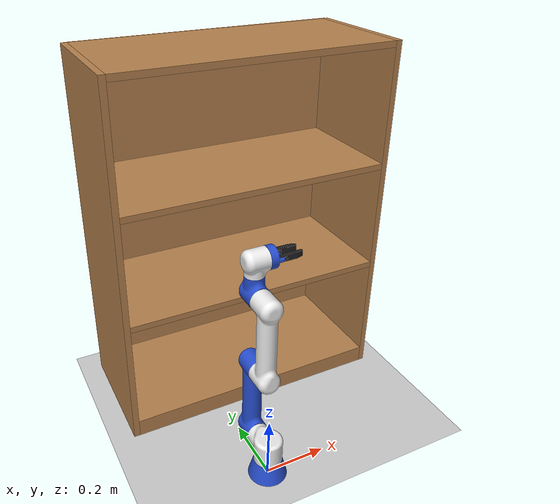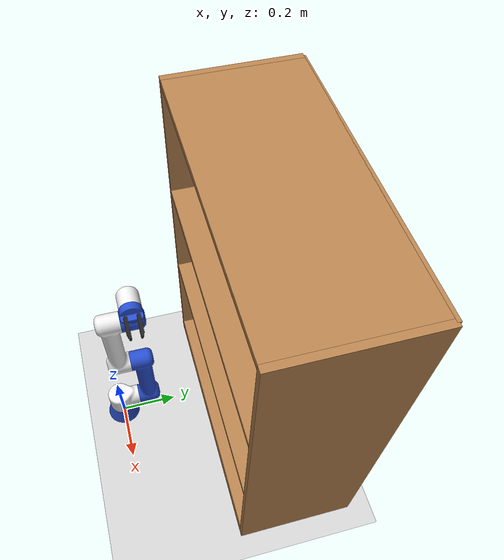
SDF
<sdf version="1.7">
 <world name="default">
  <light name="sun" type="directional">
   <pose>0 0 10 0 -0 0</pose>
   <diffuse>0.8 0.8 0.8 1</diffuse>
   <specular>0.2 0.2 0.2 1</specular>
   <attenuation>
    <range>1000</range>
    <constant>0.9</constant>
    <linear>0.01</linear>
    <quadratic>0.001</quadratic>
   </attenuation>
   <direction>-0.5 0.1 -0.9</direction>
   <spot><inner_angle>0</inner_angle><outer_angle>0</outer_angle><falloff>0</falloff></spot>
  </light>
  <model name="ground_plane">
   <static>1</static>
   <link name="link">
    <collision name="collision">
     <geometry><plane><normal>0 0 1</normal><size>100 100</size></plane></geometry>
     <surface><friction><ode><mu>100</mu><mu2>50</mu2></ode></friction></surface>
    </collision>
    <visual name="visual">
     <cast_shadows>0</cast_shadows>
     <geometry><plane><normal>0 0 1</normal><size>100 100</size></plane></geometry>
     <material>
      <script><uri>file://media/materials/scripts/gazebo.material</uri><name>Gazebo/Grey</name></script>
     </material>
    </visual>
   </link>
  </model>
  <gravity>0 0 -9.8</gravity>
  <magnetic_field>6e-06 2.3e-05 -4.2e-05</magnetic_field>
  <atmosphere type="adiabatic"/>
  <physics type="ode">
   <max_step_size>0.001</max_step_size>
   <real_time_factor>1</real_time_factor>
   <real_time_update_rate>1000</real_time_update_rate>
  </physics>
  <scene><ambient>0.4 0.4 0.4 1</ambient><background>0.7 0.7 0.7 1</background><shadows>1</shadows></scene>
  <audio><device>default</device></audio>
  <spherical_coordinates>
   <surface_model>EARTH_WGS84</surface_model>
   <latitude_deg>0</latitude_deg>
   <longitude_deg>0</longitude_deg>
   <elevation>0</elevation>
   <heading_deg>0</heading_deg>
  </spherical_coordinates>
  <model name="manipulator">
   <link name="ground">
    <inertial>
     <pose>0 -0 0.028942 0 -0 0</pose>
     <mass>4.22433</mass>
     <inertia>
      <ixx>0.004379</ixx>
      <ixy>0</ixy>
      <ixz>0</ixz>
      <iyy>0.004379</iyy>
      <iyz>-1.92593e-34</iyz>
      <izz>0.005692</izz>
     </inertia>
    </inertial>
    <collision name="ground_fixed_joint_lump__base_link_collision">
     <geometry>
      <mesh>
       <scale>0.001 0.001 0.001</scale>
       <uri>file:///home/chaitanya/ros_workspace/install/manipulator/share/manipulator/meshes/base_link.stl</uri>
      </mesh>
     </geometry>
    </collision>
    <visual name="ground_fixed_joint_lump__base_link_visual">
     <geometry>
      <mesh>
       <scale>0.001 0.001 0.001</scale>
       <uri>file:///home/chaitanya/ros_workspace/install/manipulator/share/manipulator/meshes/base_link.stl</uri>
      </mesh>
     </geometry>
     <material>
      <script><name>Gazebo/Blue</name><uri>file://media/materials/scripts/gazebo.material</uri></script>
     </material>
    </visual>
   </link>
   <joint name="joint_1" type="revolute">
    <pose relative_to="ground">0 0 0.06 0 -0 1.5708</pose>
    <parent>ground</parent>
    <child>link_1</child>
    <axis>
     <xyz>0 0 1</xyz>
     <limit><lower>-6.28318</lower><upper>0</upper><effort>100</effort><velocity>100</velocity></limit>
     <dynamics><spring_reference>0</spring_reference><spring_stiffness>0</spring_stiffness></dynamics>
    </axis>
   </joint>
   <link name="link_1">
    <pose relative_to="joint_1">0 0 0 0 -0 0</pose>
    <inertial>
     <pose>0.014366 0 0.04095 0 -0 0</pose>
     <mass>4.72636</mass>
     <inertia>
      <ixx>0.00426</ixx>
      <ixy>0</ixy>
      <ixz>5.5e-05</ixz>
      <iyy>0.007103</iyy>
      <iyz>0</iyz>
      <izz>0.007104</izz>
     </inertia>
    </inertial>
    <collision name="link_1_collision">
     <pose>0 0 -0.06 0 -0 0</pose>
     <geometry>
      <mesh>
       <scale>0.001 0.001 0.001</scale>
       <uri>file:///home/chaitanya/ros_workspace/install/manipulator/share/manipulator/meshes/link_1.stl</uri>
      </mesh>
     </geometry>
    </collision>
    <visual name="link_1_visual">
     <pose>0 0 -0.06 0 -0 0</pose>
     <geometry>
      <mesh>
       <scale>0.001 0.001 0.001</scale>
       <uri>file:///home/chaitanya/ros_workspace/install/manipulator/share/manipulator/meshes/link_1.stl</uri>
      </mesh>
     </geometry>
     <material>
      <script><name>Gazebo/White</name><uri>file://media/materials/scripts/gazebo.material</uri></script>
     </material>
    </visual>
   </link>
   <joint name="joint_2" type="revolute">
    <pose relative_to="link_1">0.07 0 0.04 0 -0 0</pose>
    <parent>link_1</parent>
    <child>link_2</child>
    <axis>
     <xyz>1 0 0</xyz>
     <limit><lower>-1.5708</lower><upper>1.5708</upper><effort>100</effort><velocity>100</velocity></limit>
     <dynamics><spring_reference>0</spring_reference><spring_stiffness>0</spring_stiffness></dynamics>
    </axis>
   </joint>
   <link name="link_2">
    <pose relative_to="joint_2">0 0 0 0 -0 0</pose>
    <inertial>
     <pose>0.038528 -0 0.130209 0 -0 0</pose>
     <mass>8.83396</mass>
     <inertia>
      <ixx>0.088014</ixx>
      <ixy>0</ixy>
      <ixz>0.002014</ixz>
      <iyy>0.089233</iyy>
      <iyz>0</iyz>
      <izz>0.005915</izz>
     </inertia>
    </inertial>
    <collision name="link_2_collision">
     <pose>-0.07 0 -0.1 0 -0 0</pose>
     <geometry>
      <mesh>
       <scale>0.001 0.001 0.001</scale>
       <uri>file:///home/chaitanya/ros_workspace/install/manipulator/share/manipulator/meshes/link_2.stl</uri>
      </mesh>
     </geometry>
    </collision>
    <visual name="link_2_visual">
     <pose>-0.07 0 -0.1 0 -0 0</pose>
     <geometry>
      <mesh>
       <scale>0.001 0.001 0.001</scale>
       <uri>file:///home/chaitanya/ros_workspace/install/manipulator/share/manipulator/meshes/link_2.stl</uri>
      </mesh>
     </geometry>
     <material>
      <script><name>Gazebo/Blue</name><uri>file://media/materials/scripts/gazebo.material</uri></script>
     </material>
    </visual>
   </link>
   <joint name="joint_3" type="revolute">
    <pose relative_to="link_2">0 0 0.25 0 -0 0</pose>
    <parent>link_2</parent>
    <child>link_3</child>
    <axis>
     <xyz>-1 0 0</xyz>
     <limit><lower>-1.5708</lower><upper>1.5708</upper><effort>100</effort><velocity>100</velocity></limit>
     <dynamics><spring_reference>0</spring_reference><spring_stiffness>0</spring_stiffness></dynamics>
    </axis>
   </joint>
   <link name="link_3">
    <pose relative_to="joint_3">0 0 0 0 -0 0</pose>
    <inertial>
     <pose>-0.038528 -0 0.130209 0 -0 0</pose>
     <mass>8.83396</mass>
     <inertia>
      <ixx>0.088014</ixx>
      <ixy>0</ixy>
      <ixz>-0.002014</ixz>
      <iyy>0.089233</iyy>
      <iyz>0</iyz>
      <izz>0.005915</izz>
     </inertia>
    </inertial>
    <collision name="link_3_collision">
     <pose>-0.07 0 -0.35 0 -0 0</pose>
     <geometry>
      <mesh>
       <scale>0.001 0.001 0.001</scale>
       <uri>file:///home/chaitanya/ros_workspace/install/manipulator/share/manipulator/meshes/link_3.stl</uri>
      </mesh>
     </geometry>
    </collision>
    <visual name="link_3_visual">
     <pose>-0.07 0 -0.35 0 -0 0</pose>
     <geometry>
      <mesh>
       <scale>0.001 0.001 0.001</scale>
       <uri>file:///home/chaitanya/ros_workspace/install/manipulator/share/manipulator/meshes/link_3.stl</uri>
      </mesh>
     </geometry>
     <material>
      <script><name>Gazebo/White</name><uri>file://media/materials/scripts/gazebo.material</uri></script>
     </material>
    </visual>
   </link>
   <joint name="joint_4" type="revolute">
    <pose relative_to="link_3">0 0 0.25 0 -0 0</pose>
    <parent>link_3</parent>
    <child>link_4</child>
    <axis>
     <xyz>-1 0 0</xyz>
     <limit><lower>-1.5708</lower><upper>1.5708</upper><effort>100</effort><velocity>100</velocity></limit>
     <dynamics><spring_reference>0</spring_reference><spring_stiffness>0</spring_stiffness></dynamics>
    </axis>
   </joint>
   <link name="link_4">
    <pose relative_to="joint_4">0 0 0 0 -0 0</pose>
    <inertial>
     <pose>0.040688 0 0.012789 0 -0 0</pose>
     <mass>2.87816</mass>
     <inertia>
      <ixx>0.002845</ixx>
      <ixy>0</ixy>
      <ixz>8e-06</ixz>
      <iyy>0.003158</iyy>
      <iyz>0</iyz>
      <izz>0.001986</izz>
     </inertia>
    </inertial>
    <collision name="link_4_collision">
     <pose>-0.07 0 -0.6 0 -0 0</pose>
     <geometry>
      <mesh>
       <scale>0.001 0.001 0.001</scale>
       <uri>file:///home/chaitanya/ros_workspace/install/manipulator/share/manipulator/meshes/link_4.stl</uri>
      </mesh>
     </geometry>
    </collision>
    <visual name="link_4_visual">
     <pose>-0.07 0 -0.6 0 -0 0</pose>
     <geometry>
      <mesh>
       <scale>0.001 0.001 0.001</scale>
       <uri>file:///home/chaitanya/ros_workspace/install/manipulator/share/manipulator/meshes/link_4.stl</uri>
      </mesh>
     </geometry>
     <material>
      <script><name>Gazebo/Blue</name><uri>file://media/materials/scripts/gazebo.material</uri></script>
     </material>
    </visual>
   </link>
   <joint name="joint_5" type="revolute">
    <pose relative_to="link_4">0.04 0 0.06 0 -0 0</pose>
    <parent>link_4</parent>
    <child>link_5</child>
    <axis>
     <xyz>0 0 1</xyz>
     <limit><lower>0</lower><upper>6.28318</upper><effort>100</effort><velocity>100</velocity></limit>
     <dynamics><spring_reference>0</spring_reference><spring_stiffness>0</spring_stiffness></dynamics>
    </axis>
   </joint>
   <link name="link_5">
    <pose relative_to="joint_5">0 0 0 0 -0 0</pose>
    <inertial>
     <pose>0 -0.015241 0.042031 0 -0 0</pose>
     <mass>3.09036</mass>
     <inertia>
      <ixx>0.00347834</ixx>
      <ixy>-1.49227e-10</ixy>
      <ixz>1.31991e-11</ixz>
      <iyy>0.00208524</iyy>
      <iyz>0.000131111</iyz>
      <izz>0.0032821</izz>
     </inertia>
    </inertial>
    <collision name="link_5_collision">
     <pose>-0.11 0 -0.66 0 -0 0</pose>
     <geometry>
      <mesh>
       <scale>0.001 0.001 0.001</scale>
       <uri>file:///home/chaitanya/ros_workspace/install/manipulator/share/manipulator/meshes/link_5.stl</uri>
      </mesh>
     </geometry>
    </collision>
    <collision name="link_5_fixed_joint_lump__gripper_base_collision_1">
     <pose>-0.11 0 -0.66 0 -0 0</pose>
     <geometry>
      <mesh>
       <scale>0.001 0.001 0.001</scale>
       <uri>file:///home/chaitanya/ros_workspace/install/manipulator/share/manipulator/meshes/gripper_base.stl</uri>
      </mesh>
     </geometry>
    </collision>
    <visual name="link_5_visual">
     <pose>-0.11 0 -0.66 0 -0 0</pose>
     <geometry>
      <mesh>
       <scale>0.001 0.001 0.001</scale>
       <uri>file:///home/chaitanya/ros_workspace/install/manipulator/share/manipulator/meshes/link_5.stl</uri>
      </mesh>
     </geometry>
     <material>
      <script><name>Gazebo/White</name><uri>file://media/materials/scripts/gazebo.material</uri></script>
     </material>
    </visual>
    <visual name="link_5_fixed_joint_lump__gripper_base_visual_1">
     <pose>-0.11 0 -0.66 0 -0 0</pose>
     <geometry>
      <mesh>
       <scale>0.001 0.001 0.001</scale>
       <uri>file:///home/chaitanya/ros_workspace/install/manipulator/share/manipulator/meshes/gripper_base.stl</uri>
      </mesh>
     </geometry>
     <material>
      <script><name>Gazebo/Blue</name><uri>file://media/materials/scripts/gazebo.material</uri></script>
     </material>
    </visual>
   </link>
   <joint name="finger_joint_1" type="revolute">
    <pose relative_to="link_5">0.02 -0.07 0.050114 0 -0 0</pose>
    <parent>link_5</parent>
    <child>finger_1</child>
    <axis>
     <xyz>0 0 -1</xyz>
     <limit><lower>-1.5708</lower><upper>0</upper><effort>100</effort><velocity>100</velocity></limit>
     <dynamics><spring_reference>0</spring_reference><spring_stiffness>0</spring_stiffness></dynamics>
    </axis>
   </joint>
   <link name="finger_1">
    <pose relative_to="finger_joint_1">0 0 0 0 -0 0</pose>
    <inertial>
     <pose>-0.000525 -0.0353 -0.005 0 -0 0</pose>
     <mass>0.112836</mass>
     <inertia>
      <ixx>4.8e-05</ixx>
      <ixy>-1e-06</ixy>
      <ixz>0</ixz>
      <iyy>6e-06</iyy>
      <iyz>0</iyz>
      <izz>4.5e-05</izz>
     </inertia>
    </inertial>
    <collision name="finger_1_collision">
     <pose>-0.13 0.07 -0.710114 0 -0 0</pose>
     <geometry>
      <mesh>
       <scale>0.001 0.001 0.001</scale>
       <uri>file:///home/chaitanya/ros_workspace/install/manipulator/share/manipulator/meshes/finger_1.stl</uri>
      </mesh>
     </geometry>
    </collision>
    <visual name="finger_1_visual">
     <pose>-0.13 0.07 -0.710114 0 -0 0</pose>
     <geometry>
      <mesh>
       <scale>0.001 0.001 0.001</scale>
       <uri>file:///home/chaitanya/ros_workspace/install/manipulator/share/manipulator/meshes/finger_1.stl</uri>
      </mesh>
     </geometry>
     <material>
      <script><name>Gazebo/Black</name><uri>file://media/materials/scripts/gazebo.material</uri></script>
     </material>
    </visual>
   </link>
   <joint name="finger_joint_2" type="revolute">
    <pose relative_to="link_5">-0.02 -0.07 0.050114 0 -0 0</pose>
    <parent>link_5</parent>
    <child>finger_2</child>
    <axis>
     <xyz>0 0 -1</xyz>
     <limit><lower>0</lower><upper>1.5708</upper><effort>100</effort><velocity>100</velocity></limit>
     <dynamics><spring_reference>0</spring_reference><spring_stiffness>0</spring_stiffness></dynamics>
    </axis>
   </joint>
   <link name="finger_2">
    <pose relative_to="finger_joint_2">0 0 0 0 -0 0</pose>
    <inertial>
     <pose>0.000525 -0.0353 -0.005 0 -0 0</pose>
     <mass>0.112836</mass>
     <inertia>
      <ixx>4.8e-05</ixx>
      <ixy>1e-06</ixy>
      <ixz>0</ixz>
      <iyy>6e-06</iyy>
      <iyz>0</iyz>
      <izz>4.5e-05</izz>
     </inertia>
    </inertial>
    <collision name="finger_2_collision">
     <pose>-0.09 0.07 -0.710114 0 -0 0</pose>
     <geometry>
      <mesh>
       <scale>0.001 0.001 0.001</scale>
       <uri>file:///home/chaitanya/ros_workspace/install/manipulator/share/manipulator/meshes/finger_2.stl</uri>
      </mesh>
     </geometry>
    </collision>
    <visual name="finger_2_visual">
     <pose>-0.09 0.07 -0.710114 0 -0 0</pose>
     <geometry>
      <mesh>
       <scale>0.001 0.001 0.001</scale>
       <uri>file:///home/chaitanya/ros_workspace/install/manipulator/share/manipulator/meshes/finger_2.stl</uri>
      </mesh>
     </geometry>
     <material>
      <script><name>Gazebo/Black</name><uri>file://media/materials/scripts/gazebo.material</uri></script>
     </material>
    </visual>
   </link>
  </model>
  <model name="bookshelf">
   <static>1</static>
   <link name="link">
    <inertial><mass>1</mass></inertial>
    <collision name="back">
     <pose>0 0.005 0.6 0 -0 0</pose>
     <geometry><box><size>0.9 0.01 1.2</size></box></geometry>
    </collision>
    <visual name="visual1">
     <pose>0 0.005 0.6 0 -0 0</pose>
     <geometry><box><size>0.9 0.01 1.2</size></box></geometry>
     <material>
      <script><uri>file://media/materials/scripts/gazebo.material</uri><name>Gazebo/Wood</name></script>
     </material>
    </visual>
    <collision name="left_side">
     <pose>0.45 -0.195 0.6 0 -0 0</pose>
     <geometry><box><size>0.02 0.4 1.2</size></box></geometry>
    </collision>
    <visual name="visual2">
     <pose>0.45 -0.195 0.6 0 -0 0</pose>
     <geometry><box><size>0.02 0.4 1.2</size></box></geometry>
     <material>
      <script><uri>file://media/materials/scripts/gazebo.material</uri><name>Gazebo/Wood</name></script>
     </material>
    </visual>
    <collision name="right_side">
     <pose>-0.45 -0.195 0.6 0 -0 0</pose>
     <geometry><box><size>0.02 0.4 1.2</size></box></geometry>
    </collision>
    <visual name="visual3">
     <pose>-0.45 -0.195 0.6 0 -0 0</pose>
     <geometry><box><size>0.02 0.4 1.2</size></box></geometry>
     <material>
      <script><uri>file://media/materials/scripts/gazebo.material</uri><name>Gazebo/Wood</name></script>
     </material>
    </visual>
    <collision name="bottom">
     <pose>0 -0.195 0.03 0 -0 0</pose>
     <geometry><box><size>0.88 0.4 0.06</size></box></geometry>
    </collision>
    <visual name="visual4">
     <pose>0 -0.195 0.03 0 -0 0</pose>
     <geometry><box><size>0.88 0.4 0.06</size></box></geometry>
     <material>
      <script><uri>file://media/materials/scripts/gazebo.material</uri><name>Gazebo/Wood</name></script>
     </material>
    </visual>
    <collision name="top">
     <pose>0 -0.195 1.19 0 -0 0</pose>
     <geometry><box><size>0.88 0.4 0.02</size></box></geometry>
    </collision>
    <visual name="visual5">
     <pose>0 -0.195 1.19 0 -0 0</pose>
     <geometry><box><size>0.88 0.4 0.02</size></box></geometry>
     <material>
      <script><uri>file://media/materials/scripts/gazebo.material</uri><name>Gazebo/Wood</name></script>
     </material>
    </visual>
    <collision name="low_shelf">
     <pose>0 -0.195 0.43 0 -0 0</pose>
     <geometry><box><size>0.88 0.4 0.02</size></box></geometry>
    </collision>
    <visual name="visual6">
     <pose>0 -0.195 0.43 0 -0 0</pose>
     <geometry><box><size>0.88 0.4 0.02</size></box></geometry>
     <material>
      <script><uri>file://media/materials/scripts/gazebo.material</uri><name>Gazebo/Wood</name></script>
     </material>
    </visual>
    <collision name="high_shelf">
     <pose>0 -0.195 0.8 0 -0 0</pose>
     <geometry><box><size>0.88 0.4 0.02</size></box></geometry>
    </collision>
    <visual name="visual7">
     <pose>0 -0.195 0.8 0 -0 0</pose>
     <geometry><box><size>0.88 0.4 0.02</size></box></geometry>
     <material>
      <script><uri>file://media/materials/scripts/gazebo.material</uri><name>Gazebo/Wood</name></script>
     </material>
    </visual>
   </link>
   <pose>0.131601 0.710142 0 0 -0 0</pose>
  </model>
 </world>
</sdf>
